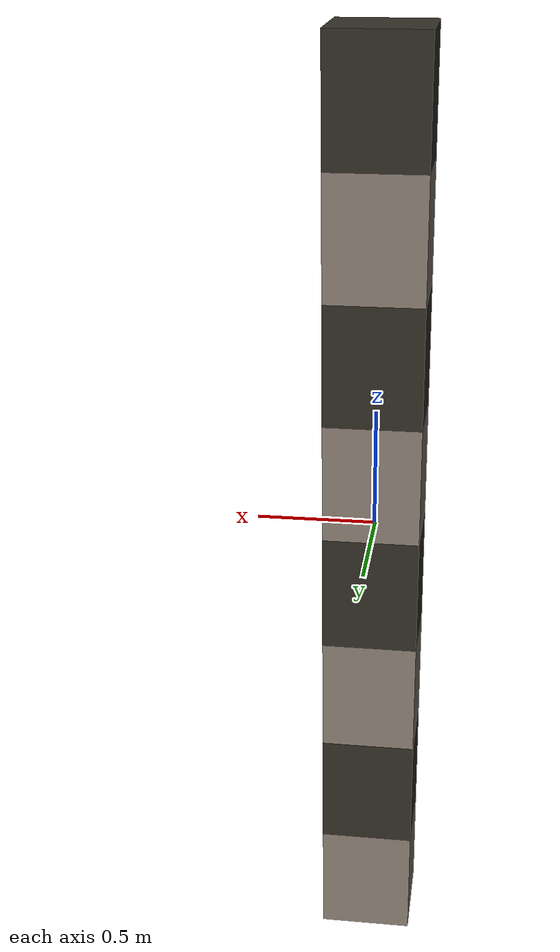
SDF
<?xml version="1.0" encoding="UTF-8"?>
<sdf version='1.9'>
  <model name='warehouse_pillar'>
    <static>true</static>
    <link name='link'>
      <collision name='collision'>
        <geometry>
          <box><size>0.4 0.4 4.0</size></box>
        </geometry>
      </collision>
      <visual name='band0'>
        <pose>0 0 -1.75 0 0 0</pose>
        <geometry><box><size>0.4 0.4 0.5</size></box></geometry>
        <material>
          <ambient>0.55 0.5 0.45 1</ambient>
          <diffuse>0.55 0.5 0.45 1</diffuse>
          <specular>0.2 0.2 0.2 1</specular>
        </material>
      </visual>
      <visual name='band1'>
        <pose>0 0 -1.25 0 0 0</pose>
        <geometry><box><size>0.4 0.4 0.5</size></box></geometry>
        <material>
          <ambient>0.2 0.18 0.15 1</ambient>
          <diffuse>0.2 0.18 0.15 1</diffuse>
          <specular>0.2 0.2 0.2 1</specular>
        </material>
      </visual>
      <visual name='band2'>
        <pose>0 0 -0.75 0 0 0</pose>
        <geometry><box><size>0.4 0.4 0.5</size></box></geometry>
        <material>
          <ambient>0.55 0.5 0.45 1</ambient>
          <diffuse>0.55 0.5 0.45 1</diffuse>
          <specular>0.2 0.2 0.2 1</specular>
        </material>
      </visual>
      <visual name='band3'>
        <pose>0 0 -0.25 0 0 0</pose>
        <geometry><box><size>0.4 0.4 0.5</size></box></geometry>
        <material>
          <ambient>0.2 0.18 0.15 1</ambient>
          <diffuse>0.2 0.18 0.15 1</diffuse>
          <specular>0.2 0.2 0.2 1</specular>
        </material>
      </visual>
      <visual name='band4'>
        <pose>0 0 0.25 0 0 0</pose>
        <geometry><box><size>0.4 0.4 0.5</size></box></geometry>
        <material>
          <ambient>0.55 0.5 0.45 1</ambient>
          <diffuse>0.55 0.5 0.45 1</diffuse>
          <specular>0.2 0.2 0.2 1</specular>
        </material>
      </visual>
      <visual name='band5'>
        <pose>0 0 0.75 0 0 0</pose>
        <geometry><box><size>0.4 0.4 0.5</size></box></geometry>
        <material>
          <ambient>0.2 0.18 0.15 1</ambient>
          <diffuse>0.2 0.18 0.15 1</diffuse>
          <specular>0.2 0.2 0.2 1</specular>
        </material>
      </visual>
      <visual name='band6'>
        <pose>0 0 1.25 0 0 0</pose>
        <geometry><box><size>0.4 0.4 0.5</size></box></geometry>
        <material>
          <ambient>0.55 0.5 0.45 1</ambient>
          <diffuse>0.55 0.5 0.45 1</diffuse>
          <specular>0.2 0.2 0.2 1</specular>
        </material>
      </visual>
      <visual name='band7'>
        <pose>0 0 1.75 0 0 0</pose>
        <geometry><box><size>0.4 0.4 0.5</size></box></geometry>
        <material>
          <ambient>0.2 0.18 0.15 1</ambient>
          <diffuse>0.2 0.18 0.15 1</diffuse>
          <specular>0.2 0.2 0.2 1</specular>
        </material>
      </visual>
    </link>
  </model>
</sdf>
